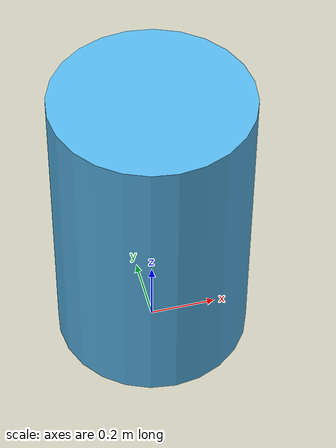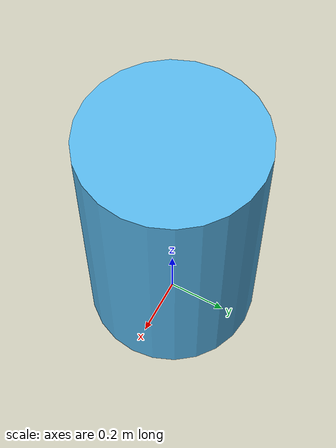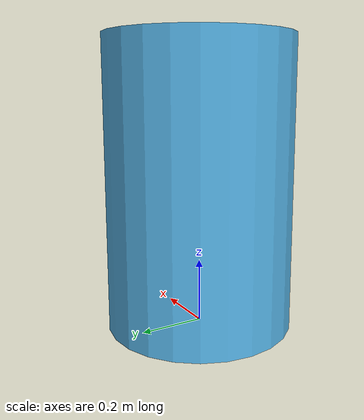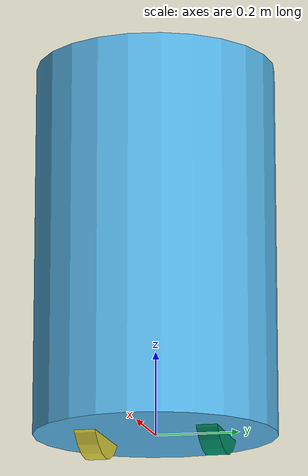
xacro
<?xml version="1.0"?>
<robot xmlns:xacro="http://www.ros.org/wiki/xacro" name="service_roboter">
    <xacro:property name="barrel_radius" value="0.290" />
    <xacro:property name="barrel_hight"  value="0.900" />

    <xacro:property name="wheel_radius"  value="0.150" />
    <xacro:property name="wheel_width"   value="0.050" />
    <xacro:property name="wheel_peakout" value="0.050" />

    <link name="base_link"/>

    <link name="barrel_link">
        <visual>
            <origin xyz="0.0 0.0 ${barrel_hight / 2}" rpy="0.0 0.0 0.0"/>
            <geometry>
                <cylinder radius="${barrel_radius}" length="${barrel_hight}"/>
            </geometry>
        </visual>
    </link>
    <joint name="barrel_joint" type="fixed">
        <parent link="base_link"/>
        <child link="barrel_link"/>
        <origin xyz="0.0 0.0 0.0" rpy="0.0 0.0 0.0"/>
    </joint>

    <link name="wheel_left_link">
        <visual>
            <origin xyz="0.0 0.0 0.0" rpy="${pi/2} 0.0 0.0"/>
            <geometry>
                <cylinder radius="${wheel_radius}" length="${wheel_width}"/>
            </geometry>
        </visual>
    </link>
    <joint name="wheel_left_joint" type="continuous">
        <parent link="base_link"/>
        <child link="wheel_left_link"/>
        <axis xyz="0 1 0"/>
        <origin xyz="0.0 ${barrel_radius/2.0} ${wheel_radius-wheel_peakout}" rpy="0.0 0.0 0.0"/>
    </joint>

    <link name="wheel_right_link">
        <visual>
            <origin xyz="0.0 0.0 0.0" rpy="${pi/2} 0.0 0.0"/>
            <geometry>
                <cylinder radius="${wheel_radius}" length="${wheel_width}"/>
            </geometry>
        </visual>
    </link>
    <joint name="wheel_right_joint" type="continuous">
        <parent link="base_link"/>
        <child link="wheel_right_link"/>
        <axis xyz="1 0 0"/>
        <origin xyz="0.0 -${barrel_radius/2.0} ${wheel_radius-wheel_peakout}" rpy="0.0 0.0 0.0"/>
    </joint>

</robot>
